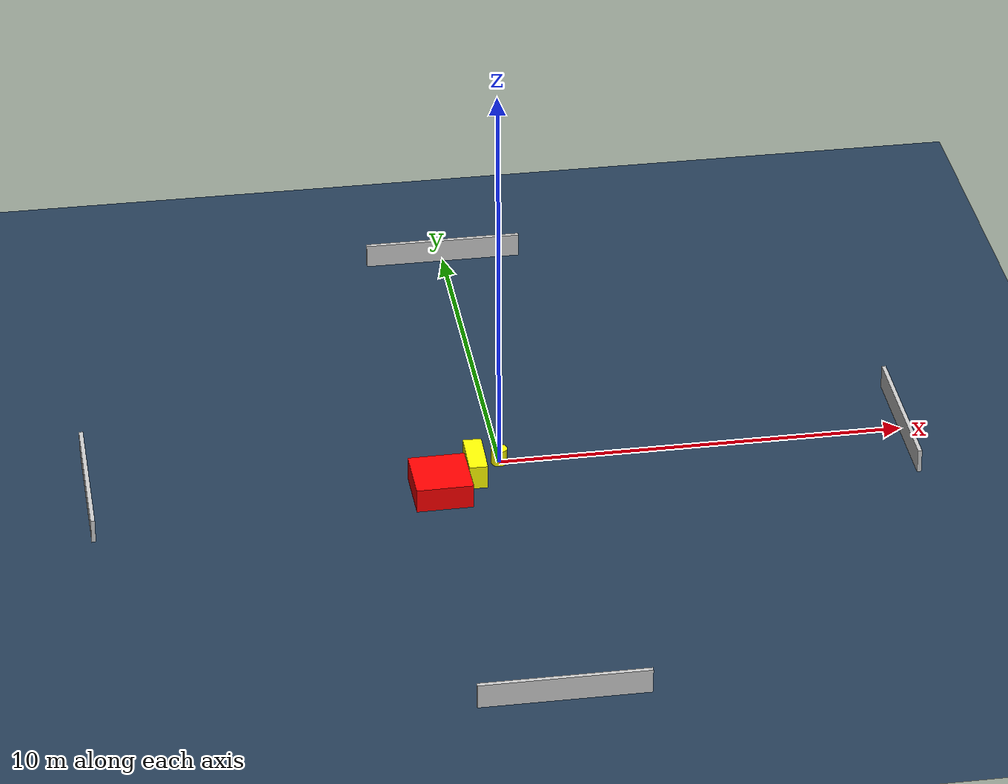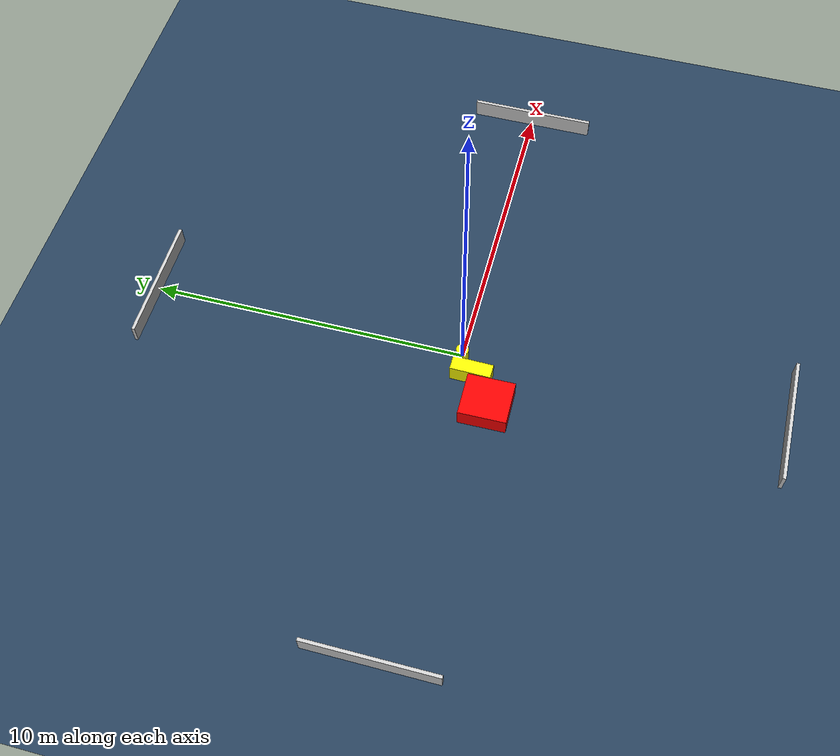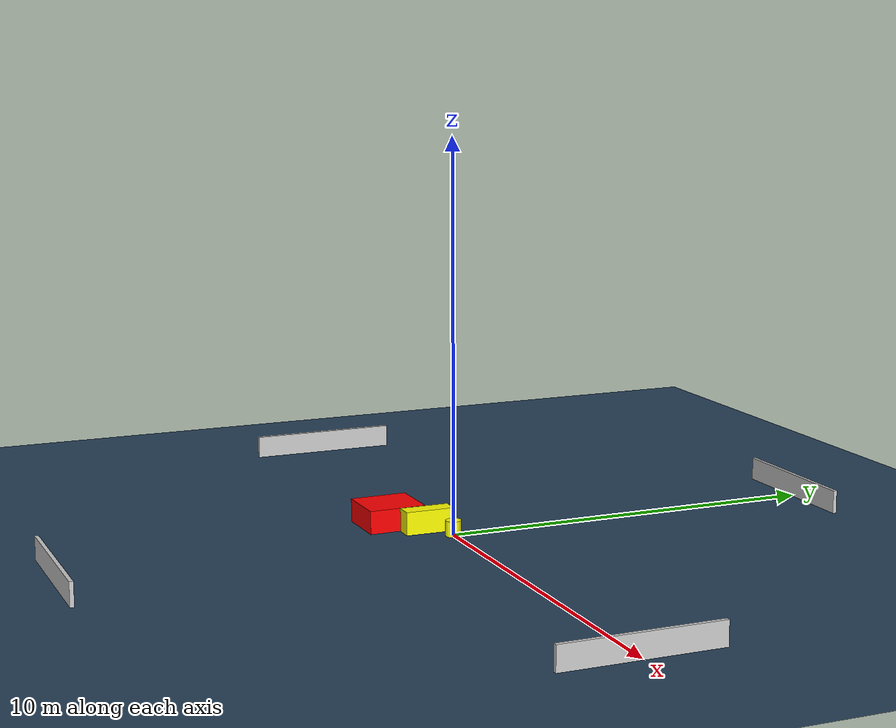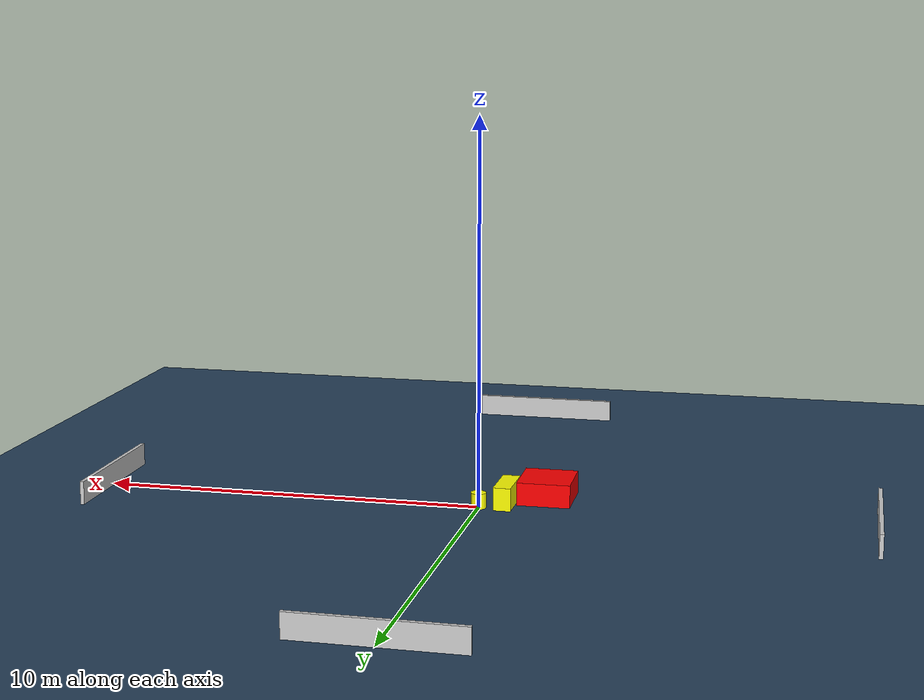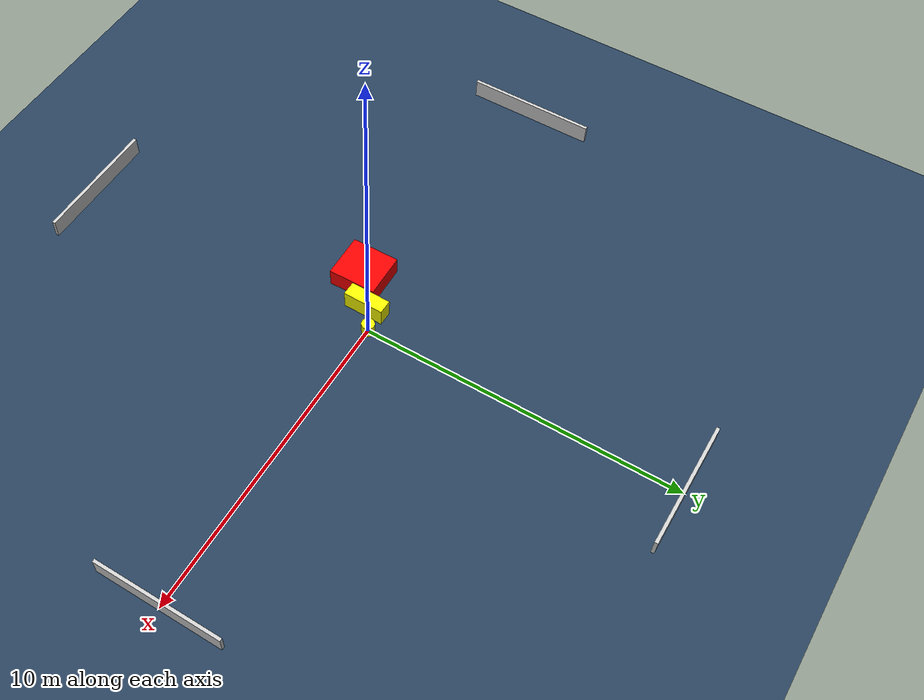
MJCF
<?xml version="1.0" ?>
<mujoco model="generated_environment">
  <option timestep="0.01" integrator="RK4" cone="elliptic"/>
  <default>
    <geom density="1"/>
  </default>
  <asset>
    <texture builtin="gradient" height="3072" name="skybox" rgb1="0.3 0.5 0.7" rgb2="0 0 0" type="skybox" width="512"/>
    <texture builtin="checker" height="300" name="groundplane" rgb1="0.2 0.3 0.4" rgb2="0.1 0.2 0.3" type="2d" width="300"/>
    <material name="groundplane" reflectance="0.2" texrepeat="5 5" texture="groundplane"/>
  </asset>
  <worldbody>
    <light dir="0 0 -1" directional="true" pos="0 0 1.5"/>
    <geom condim="3" friction="0.5 0.005 0.001" material="groundplane" name="floor" pos="0 0 0" size="0 0 0.05" type="plane"/>
    <body name="walls">
      <geom name="wall_1" condim="4" pos="-10.0 0.0 0.3" rgba="0.800000011920929 0.800000011920929 0.800000011920929 1.0" size="0.05 2.0 0.3" type="box"/>
      <geom name="wall_2" condim="4" pos="10.0 0.0 0.3" rgba="0.800000011920929 0.800000011920929 0.800000011920929 1.0" size="0.05 2.0 0.3" type="box"/>
      <geom name="wall_3" condim="4" pos="0.0 -10.0 0.3" rgba="0.800000011920929 0.800000011920929 0.800000011920929 1.0" size="2.0 0.05 0.3" type="box"/>
      <geom name="wall_4" condim="4" pos="0.0 10.0 0.3" rgba="0.800000011920929 0.800000011920929 0.800000011920929 1.0" size="2.0 0.05 0.3" type="box"/>
    </body>
    <body name="robot">
      <joint name="joint_x" type="slide" pos="0 0 0" axis="1 0 0"/>
      <joint name="joint_y" type="slide" pos="0 0 0" axis="0 1 0"/>
      <geom name="robot" type="cylinder" pos="0.0 0.0 0.2" size="0.2 0.2 0.0" mass="5.0" friction="1.0 0.005 0.0001" condim="4" rgba="1.0 1.0 0.0 1.0"/>
    </body>
    <body name="obstacle_1_movable">
      <geom name="obstacle_1_movable" condim="4" pos="-0.6469640140696674 -0.4451825286454241 0.3" euler="0 0 179.09448041703706" friction="0.0 0.005 0.001" rgba="1.0 1.0 0.0 1.0" size="0.2263691542374156 0.6365188021012642 0.3" type="box" mass="0.1"/>
      <joint type="free"/>
    </body>
    <body name="obstacle_2_static">
      <geom name="obstacle_2_static" condim="4" pos="-1.5902501131708207 -1.1437857627259946 0.3" euler="0 0 0.7579672560847905" friction="0.0 0.005 0.001" rgba="1.0 0.0 0.0 1.0" size="0.6919875743238684 0.742543317804295 0.3" type="box"/>
    </body>
  </worldbody>
  <actuator>
    <motor name="actuator_x" joint="joint_x" gear="1" ctrlrange="-1 1"/>
    <motor name="actuator_y" joint="joint_y" gear="1" ctrlrange="-1 1"/>
  </actuator>
</mujoco>
